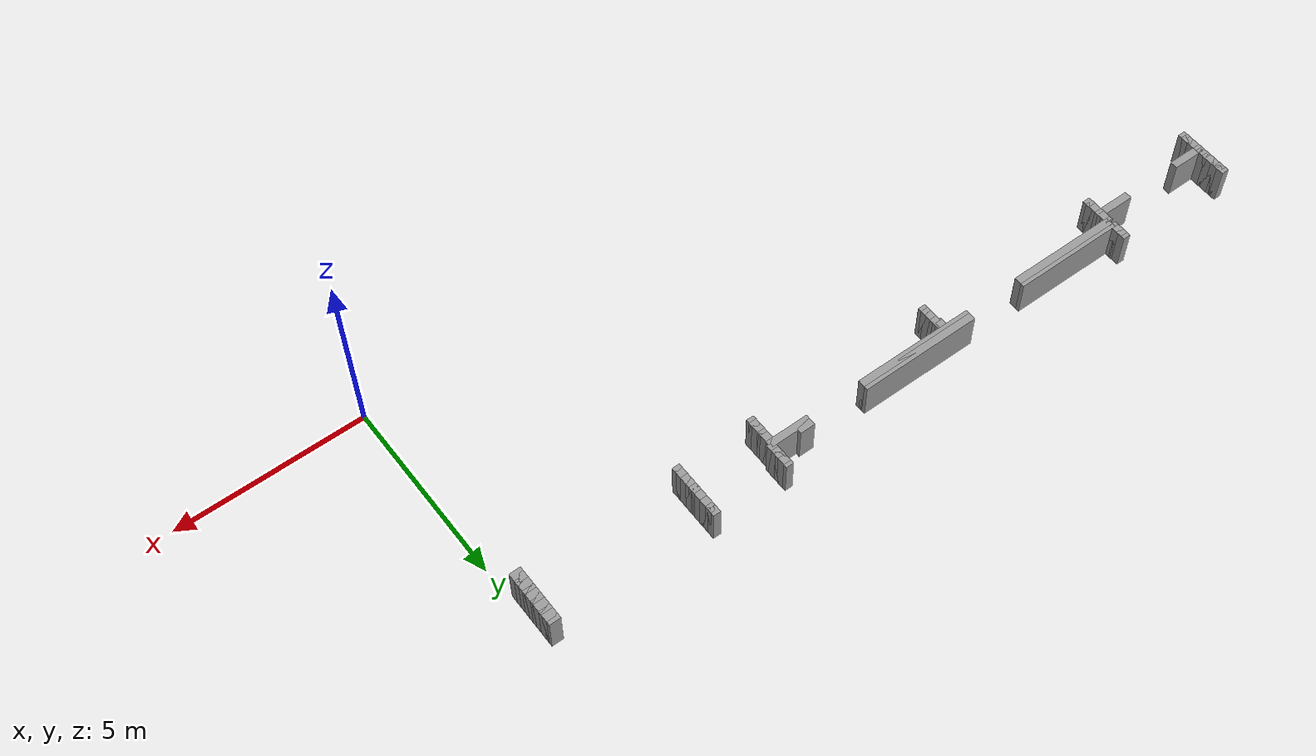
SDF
<sdf version="1.6">
 <world name="GridMap">
  <model name="GridMap">
   <link name="Wall_(198.5,61.0)">
    <collision name="Wall_(198.5,61.0)_Collision">
     <geometry><box><size>0.2 0.2 1.0</size></box></geometry>
     <pose>-19.85 6.1 0.5 0 -0 0</pose>
    </collision>
    <visual name="Wall_(198.5,61.0)_Visual">
     <geometry><box><size>0.2 0.2 1.0</size></box></geometry>
     <pose>-19.85 6.1 0.5 0 -0 0</pose>
     <material>
      <script><uri>file://media/materials/scripts/gazebo.material</uri><name>Gazebo/Grey</name></script>
      <ambient>1 1 1 1</ambient>
     </material>
     <meta><layer>0</layer></meta>
    </visual>
    <pose>0 0 0.5 0 -0 0</pose>
   </link>
   <link name="Wall_(1.5,62.0)">
    <collision name="Wall_(1.5,62.0)_Collision">
     <geometry><box><size>0.3 0.2 1.0</size></box></geometry>
     <pose>-0.15 6.2 0.5 0 -0 0</pose>
    </collision>
    <visual name="Wall_(1.5,62.0)_Visual">
     <geometry><box><size>0.3 0.2 1.0</size></box></geometry>
     <pose>-0.15 6.2 0.5 0 -0 0</pose>
     <material>
      <script><uri>file://media/materials/scripts/gazebo.material</uri><name>Gazebo/Grey</name></script>
      <ambient>1 1 1 1</ambient>
     </material>
     <meta><layer>0</layer></meta>
    </visual>
    <pose>0 0 0.5 0 -0 0</pose>
   </link>
   <link name="Wall_(44.0,62.0)">
    <collision name="Wall_(44.0,62.0)_Collision">
     <geometry><box><size>0.2 0.2 1.0</size></box></geometry>
     <pose>-4.4 6.2 0.5 0 -0 0</pose>
    </collision>
    <visual name="Wall_(44.0,62.0)_Visual">
     <geometry><box><size>0.2 0.2 1.0</size></box></geometry>
     <pose>-4.4 6.2 0.5 0 -0 0</pose>
     <material>
      <script><uri>file://media/materials/scripts/gazebo.material</uri><name>Gazebo/Grey</name></script>
      <ambient>1 1 1 1</ambient>
     </material>
     <meta><layer>0</layer></meta>
    </visual>
    <pose>0 0 0.5 0 -0 0</pose>
   </link>
   <link name="Wall_(64.5,62.0)">
    <collision name="Wall_(64.5,62.0)_Collision">
     <geometry><box><size>0.2 0.2 1.0</size></box></geometry>
     <pose>-6.45 6.2 0.5 0 -0 0</pose>
    </collision>
    <visual name="Wall_(64.5,62.0)_Visual">
     <geometry><box><size>0.2 0.2 1.0</size></box></geometry>
     <pose>-6.45 6.2 0.5 0 -0 0</pose>
     <material>
      <script><uri>file://media/materials/scripts/gazebo.material</uri><name>Gazebo/Grey</name></script>
      <ambient>1 1 1 1</ambient>
     </material>
     <meta><layer>0</layer></meta>
    </visual>
    <pose>0 0 0.5 0 -0 0</pose>
   </link>
   <link name="Wall_(114.5,62.0)">
    <collision name="Wall_(114.5,62.0)_Collision">
     <geometry><box><size>0.2 0.2 1.0</size></box></geometry>
     <pose>-11.45 6.2 0.5 0 -0 0</pose>
    </collision>
    <visual name="Wall_(114.5,62.0)_Visual">
     <geometry><box><size>0.2 0.2 1.0</size></box></geometry>
     <pose>-11.45 6.2 0.5 0 -0 0</pose>
     <material>
      <script><uri>file://media/materials/scripts/gazebo.material</uri><name>Gazebo/Grey</name></script>
      <ambient>1 1 1 1</ambient>
     </material>
     <meta><layer>0</layer></meta>
    </visual>
    <pose>0 0 0.5 0 -0 0</pose>
   </link>
   <link name="Wall_(166.0,62.0)">
    <collision name="Wall_(166.0,62.0)_Collision">
     <geometry><box><size>0.2 0.2 1.0</size></box></geometry>
     <pose>-16.6 6.2 0.5 0 -0 0</pose>
    </collision>
    <visual name="Wall_(166.0,62.0)_Visual">
     <geometry><box><size>0.2 0.2 1.0</size></box></geometry>
     <pose>-16.6 6.2 0.5 0 -0 0</pose>
     <material>
      <script><uri>file://media/materials/scripts/gazebo.material</uri><name>Gazebo/Grey</name></script>
      <ambient>1 1 1 1</ambient>
     </material>
     <meta><layer>0</layer></meta>
    </visual>
    <pose>0 0 0.5 0 -0 0</pose>
   </link>
   <link name="Wall_(198.5,62.0)">
    <collision name="Wall_(198.5,62.0)_Collision">
     <geometry><box><size>0.2 0.2 1.0</size></box></geometry>
     <pose>-19.85 6.2 0.5 0 -0 0</pose>
    </collision>
    <visual name="Wall_(198.5,62.0)_Visual">
     <geometry><box><size>0.2 0.2 1.0</size></box></geometry>
     <pose>-19.85 6.2 0.5 0 -0 0</pose>
     <material>
      <script><uri>file://media/materials/scripts/gazebo.material</uri><name>Gazebo/Grey</name></script>
      <ambient>1 1 1 1</ambient>
     </material>
     <meta><layer>0</layer></meta>
    </visual>
    <pose>0 0 0.5 0 -0 0</pose>
   </link>
   <link name="Wall_(1.5,63.0)">
    <collision name="Wall_(1.5,63.0)_Collision">
     <geometry><box><size>0.3 0.2 1.0</size></box></geometry>
     <pose>-0.15 6.3 0.5 0 -0 0</pose>
    </collision>
    <visual name="Wall_(1.5,63.0)_Visual">
     <geometry><box><size>0.3 0.2 1.0</size></box></geometry>
     <pose>-0.15 6.3 0.5 0 -0 0</pose>
     <material>
      <script><uri>file://media/materials/scripts/gazebo.material</uri><name>Gazebo/Grey</name></script>
      <ambient>1 1 1 1</ambient>
     </material>
     <meta><layer>0</layer></meta>
    </visual>
    <pose>0 0 0.5 0 -0 0</pose>
   </link>
   <link name="Wall_(44.0,63.0)">
    <collision name="Wall_(44.0,63.0)_Collision">
     <geometry><box><size>0.2 0.2 1.0</size></box></geometry>
     <pose>-4.4 6.3 0.5 0 -0 0</pose>
    </collision>
    <visual name="Wall_(44.0,63.0)_Visual">
     <geometry><box><size>0.2 0.2 1.0</size></box></geometry>
     <pose>-4.4 6.3 0.5 0 -0 0</pose>
     <material>
      <script><uri>file://media/materials/scripts/gazebo.material</uri><name>Gazebo/Grey</name></script>
      <ambient>1 1 1 1</ambient>
     </material>
     <meta><layer>0</layer></meta>
    </visual>
    <pose>0 0 0.5 0 -0 0</pose>
   </link>
   <link name="Wall_(64.5,63.0)">
    <collision name="Wall_(64.5,63.0)_Collision">
     <geometry><box><size>0.2 0.2 1.0</size></box></geometry>
     <pose>-6.45 6.3 0.5 0 -0 0</pose>
    </collision>
    <visual name="Wall_(64.5,63.0)_Visual">
     <geometry><box><size>0.2 0.2 1.0</size></box></geometry>
     <pose>-6.45 6.3 0.5 0 -0 0</pose>
     <material>
      <script><uri>file://media/materials/scripts/gazebo.material</uri><name>Gazebo/Grey</name></script>
      <ambient>1 1 1 1</ambient>
     </material>
     <meta><layer>0</layer></meta>
    </visual>
    <pose>0 0 0.5 0 -0 0</pose>
   </link>
   <link name="Wall_(114.5,63.0)">
    <collision name="Wall_(114.5,63.0)_Collision">
     <geometry><box><size>0.2 0.2 1.0</size></box></geometry>
     <pose>-11.45 6.3 0.5 0 -0 0</pose>
    </collision>
    <visual name="Wall_(114.5,63.0)_Visual">
     <geometry><box><size>0.2 0.2 1.0</size></box></geometry>
     <pose>-11.45 6.3 0.5 0 -0 0</pose>
     <material>
      <script><uri>file://media/materials/scripts/gazebo.material</uri><name>Gazebo/Grey</name></script>
      <ambient>1 1 1 1</ambient>
     </material>
     <meta><layer>0</layer></meta>
    </visual>
    <pose>0 0 0.5 0 -0 0</pose>
   </link>
   <link name="Wall_(166.0,63.0)">
    <collision name="Wall_(166.0,63.0)_Collision">
     <geometry><box><size>0.2 0.2 1.0</size></box></geometry>
     <pose>-16.6 6.3 0.5 0 -0 0</pose>
    </collision>
    <visual name="Wall_(166.0,63.0)_Visual">
     <geometry><box><size>0.2 0.2 1.0</size></box></geometry>
     <pose>-16.6 6.3 0.5 0 -0 0</pose>
     <material>
      <script><uri>file://media/materials/scripts/gazebo.material</uri><name>Gazebo/Grey</name></script>
      <ambient>1 1 1 1</ambient>
     </material>
     <meta><layer>0</layer></meta>
    </visual>
    <pose>0 0 0.5 0 -0 0</pose>
   </link>
   <link name="Wall_(198.5,63.0)">
    <collision name="Wall_(198.5,63.0)_Collision">
     <geometry><box><size>0.2 0.2 1.0</size></box></geometry>
     <pose>-19.85 6.3 0.5 0 -0 0</pose>
    </collision>
    <visual name="Wall_(198.5,63.0)_Visual">
     <geometry><box><size>0.2 0.2 1.0</size></box></geometry>
     <pose>-19.85 6.3 0.5 0 -0 0</pose>
     <material>
      <script><uri>file://media/materials/scripts/gazebo.material</uri><name>Gazebo/Grey</name></script>
      <ambient>1 1 1 1</ambient>
     </material>
     <meta><layer>0</layer></meta>
    </visual>
    <pose>0 0 0.5 0 -0 0</pose>
   </link>
   <link name="Wall_(1.5,64.0)">
    <collision name="Wall_(1.5,64.0)_Collision">
     <geometry><box><size>0.3 0.2 1.0</size></box></geometry>
     <pose>-0.15 6.4 0.5 0 -0 0</pose>
    </collision>
    <visual name="Wall_(1.5,64.0)_Visual">
     <geometry><box><size>0.3 0.2 1.0</size></box></geometry>
     <pose>-0.15 6.4 0.5 0 -0 0</pose>
     <material>
      <script><uri>file://media/materials/scripts/gazebo.material</uri><name>Gazebo/Grey</name></script>
      <ambient>1 1 1 1</ambient>
     </material>
     <meta><layer>0</layer></meta>
    </visual>
    <pose>0 0 0.5 0 -0 0</pose>
   </link>
   <link name="Wall_(44.0,64.0)">
    <collision name="Wall_(44.0,64.0)_Collision">
     <geometry><box><size>0.2 0.2 1.0</size></box></geometry>
     <pose>-4.4 6.4 0.5 0 -0 0</pose>
    </collision>
    <visual name="Wall_(44.0,64.0)_Visual">
     <geometry><box><size>0.2 0.2 1.0</size></box></geometry>
     <pose>-4.4 6.4 0.5 0 -0 0</pose>
     <material>
      <script><uri>file://media/materials/scripts/gazebo.material</uri><name>Gazebo/Grey</name></script>
      <ambient>1 1 1 1</ambient>
     </material>
     <meta><layer>0</layer></meta>
    </visual>
    <pose>0 0 0.5 0 -0 0</pose>
   </link>
   <link name="Wall_(64.5,64.0)">
    <collision name="Wall_(64.5,64.0)_Collision">
     <geometry><box><size>0.2 0.2 1.0</size></box></geometry>
     <pose>-6.45 6.4 0.5 0 -0 0</pose>
    </collision>
    <visual name="Wall_(64.5,64.0)_Visual">
     <geometry><box><size>0.2 0.2 1.0</size></box></geometry>
     <pose>-6.45 6.4 0.5 0 -0 0</pose>
     <material>
      <script><uri>file://media/materials/scripts/gazebo.material</uri><name>Gazebo/Grey</name></script>
      <ambient>1 1 1 1</ambient>
     </material>
     <meta><layer>0</layer></meta>
    </visual>
    <pose>0 0 0.5 0 -0 0</pose>
   </link>
   <link name="Wall_(114.5,64.0)">
    <collision name="Wall_(114.5,64.0)_Collision">
     <geometry><box><size>0.2 0.2 1.0</size></box></geometry>
     <pose>-11.45 6.4 0.5 0 -0 0</pose>
    </collision>
    <visual name="Wall_(114.5,64.0)_Visual">
     <geometry><box><size>0.2 0.2 1.0</size></box></geometry>
     <pose>-11.45 6.4 0.5 0 -0 0</pose>
     <material>
      <script><uri>file://media/materials/scripts/gazebo.material</uri><name>Gazebo/Grey</name></script>
      <ambient>1 1 1 1</ambient>
     </material>
     <meta><layer>0</layer></meta>
    </visual>
    <pose>0 0 0.5 0 -0 0</pose>
   </link>
   <link name="Wall_(166.0,64.0)">
    <collision name="Wall_(166.0,64.0)_Collision">
     <geometry><box><size>0.2 0.2 1.0</size></box></geometry>
     <pose>-16.6 6.4 0.5 0 -0 0</pose>
    </collision>
    <visual name="Wall_(166.0,64.0)_Visual">
     <geometry><box><size>0.2 0.2 1.0</size></box></geometry>
     <pose>-16.6 6.4 0.5 0 -0 0</pose>
     <material>
      <script><uri>file://media/materials/scripts/gazebo.material</uri><name>Gazebo/Grey</name></script>
      <ambient>1 1 1 1</ambient>
     </material>
     <meta><layer>0</layer></meta>
    </visual>
    <pose>0 0 0.5 0 -0 0</pose>
   </link>
   <link name="Wall_(198.5,64.0)">
    <collision name="Wall_(198.5,64.0)_Collision">
     <geometry><box><size>0.2 0.2 1.0</size></box></geometry>
     <pose>-19.85 6.4 0.5 0 -0 0</pose>
    </collision>
    <visual name="Wall_(198.5,64.0)_Visual">
     <geometry><box><size>0.2 0.2 1.0</size></box></geometry>
     <pose>-19.85 6.4 0.5 0 -0 0</pose>
     <material>
      <script><uri>file://media/materials/scripts/gazebo.material</uri><name>Gazebo/Grey</name></script>
      <ambient>1 1 1 1</ambient>
     </material>
     <meta><layer>0</layer></meta>
    </visual>
    <pose>0 0 0.5 0 -0 0</pose>
   </link>
   <link name="Wall_(1.5,65.0)">
    <collision name="Wall_(1.5,65.0)_Collision">
     <geometry><box><size>0.3 0.2 1.0</size></box></geometry>
     <pose>-0.15 6.5 0.5 0 -0 0</pose>
    </collision>
    <visual name="Wall_(1.5,65.0)_Visual">
     <geometry><box><size>0.3 0.2 1.0</size></box></geometry>
     <pose>-0.15 6.5 0.5 0 -0 0</pose>
     <material>
      <script><uri>file://media/materials/scripts/gazebo.material</uri><name>Gazebo/Grey</name></script>
      <ambient>1 1 1 1</ambient>
     </material>
     <meta><layer>0</layer></meta>
    </visual>
    <pose>0 0 0.5 0 -0 0</pose>
   </link>
   <link name="Wall_(44.0,65.0)">
    <collision name="Wall_(44.0,65.0)_Collision">
     <geometry><box><size>0.2 0.2 1.0</size></box></geometry>
     <pose>-4.4 6.5 0.5 0 -0 0</pose>
    </collision>
    <visual name="Wall_(44.0,65.0)_Visual">
     <geometry><box><size>0.2 0.2 1.0</size></box></geometry>
     <pose>-4.4 6.5 0.5 0 -0 0</pose>
     <material>
      <script><uri>file://media/materials/scripts/gazebo.material</uri><name>Gazebo/Grey</name></script>
      <ambient>1 1 1 1</ambient>
     </material>
     <meta><layer>0</layer></meta>
    </visual>
    <pose>0 0 0.5 0 -0 0</pose>
   </link>
   <link name="Wall_(64.5,65.0)">
    <collision name="Wall_(64.5,65.0)_Collision">
     <geometry><box><size>0.2 0.2 1.0</size></box></geometry>
     <pose>-6.45 6.5 0.5 0 -0 0</pose>
    </collision>
    <visual name="Wall_(64.5,65.0)_Visual">
     <geometry><box><size>0.2 0.2 1.0</size></box></geometry>
     <pose>-6.45 6.5 0.5 0 -0 0</pose>
     <material>
      <script><uri>file://media/materials/scripts/gazebo.material</uri><name>Gazebo/Grey</name></script>
      <ambient>1 1 1 1</ambient>
     </material>
     <meta><layer>0</layer></meta>
    </visual>
    <pose>0 0 0.5 0 -0 0</pose>
   </link>
   <link name="Wall_(114.5,65.0)">
    <collision name="Wall_(114.5,65.0)_Collision">
     <geometry><box><size>0.2 0.2 1.0</size></box></geometry>
     <pose>-11.45 6.5 0.5 0 -0 0</pose>
    </collision>
    <visual name="Wall_(114.5,65.0)_Visual">
     <geometry><box><size>0.2 0.2 1.0</size></box></geometry>
     <pose>-11.45 6.5 0.5 0 -0 0</pose>
     <material>
      <script><uri>file://media/materials/scripts/gazebo.material</uri><name>Gazebo/Grey</name></script>
      <ambient>1 1 1 1</ambient>
     </material>
     <meta><layer>0</layer></meta>
    </visual>
    <pose>0 0 0.5 0 -0 0</pose>
   </link>
   <link name="Wall_(166.0,65.0)">
    <collision name="Wall_(166.0,65.0)_Collision">
     <geometry><box><size>0.2 0.2 1.0</size></box></geometry>
     <pose>-16.6 6.5 0.5 0 -0 0</pose>
    </collision>
    <visual name="Wall_(166.0,65.0)_Visual">
     <geometry><box><size>0.2 0.2 1.0</size></box></geometry>
     <pose>-16.6 6.5 0.5 0 -0 0</pose>
     <material>
      <script><uri>file://media/materials/scripts/gazebo.material</uri><name>Gazebo/Grey</name></script>
      <ambient>1 1 1 1</ambient>
     </material>
     <meta><layer>0</layer></meta>
    </visual>
    <pose>0 0 0.5 0 -0 0</pose>
   </link>
   <link name="Wall_(198.5,65.0)">
    <collision name="Wall_(198.5,65.0)_Collision">
     <geometry><box><size>0.2 0.2 1.0</size></box></geometry>
     <pose>-19.85 6.5 0.5 0 -0 0</pose>
    </collision>
    <visual name="Wall_(198.5,65.0)_Visual">
     <geometry><box><size>0.2 0.2 1.0</size></box></geometry>
     <pose>-19.85 6.5 0.5 0 -0 0</pose>
     <material>
      <script><uri>file://media/materials/scripts/gazebo.material</uri><name>Gazebo/Grey</name></script>
      <ambient>1 1 1 1</ambient>
     </material>
     <meta><layer>0</layer></meta>
    </visual>
    <pose>0 0 0.5 0 -0 0</pose>
   </link>
   <link name="Wall_(1.5,66.0)">
    <collision name="Wall_(1.5,66.0)_Collision">
     <geometry><box><size>0.3 0.2 1.0</size></box></geometry>
     <pose>-0.15 6.6 0.5 0 -0 0</pose>
    </collision>
    <visual name="Wall_(1.5,66.0)_Visual">
     <geometry><box><size>0.3 0.2 1.0</size></box></geometry>
     <pose>-0.15 6.6 0.5 0 -0 0</pose>
     <material>
      <script><uri>file://media/materials/scripts/gazebo.material</uri><name>Gazebo/Grey</name></script>
      <ambient>1 1 1 1</ambient>
     </material>
     <meta><layer>0</layer></meta>
    </visual>
    <pose>0 0 0.5 0 -0 0</pose>
   </link>
   <link name="Wall_(44.0,66.0)">
    <collision name="Wall_(44.0,66.0)_Collision">
     <geometry><box><size>0.2 0.2 1.0</size></box></geometry>
     <pose>-4.4 6.6 0.5 0 -0 0</pose>
    </collision>
    <visual name="Wall_(44.0,66.0)_Visual">
     <geometry><box><size>0.2 0.2 1.0</size></box></geometry>
     <pose>-4.4 6.6 0.5 0 -0 0</pose>
     <material>
      <script><uri>file://media/materials/scripts/gazebo.material</uri><name>Gazebo/Grey</name></script>
      <ambient>1 1 1 1</ambient>
     </material>
     <meta><layer>0</layer></meta>
    </visual>
    <pose>0 0 0.5 0 -0 0</pose>
   </link>
   <link name="Wall_(64.5,66.0)">
    <collision name="Wall_(64.5,66.0)_Collision">
     <geometry><box><size>0.2 0.2 1.0</size></box></geometry>
     <pose>-6.45 6.6 0.5 0 -0 0</pose>
    </collision>
    <visual name="Wall_(64.5,66.0)_Visual">
     <geometry><box><size>0.2 0.2 1.0</size></box></geometry>
     <pose>-6.45 6.6 0.5 0 -0 0</pose>
     <material>
      <script><uri>file://media/materials/scripts/gazebo.material</uri><name>Gazebo/Grey</name></script>
      <ambient>1 1 1 1</ambient>
     </material>
     <meta><layer>0</layer></meta>
    </visual>
    <pose>0 0 0.5 0 -0 0</pose>
   </link>
   <link name="Wall_(114.5,66.0)">
    <collision name="Wall_(114.5,66.0)_Collision">
     <geometry><box><size>0.2 0.2 1.0</size></box></geometry>
     <pose>-11.45 6.6 0.5 0 -0 0</pose>
    </collision>
    <visual name="Wall_(114.5,66.0)_Visual">
     <geometry><box><size>0.2 0.2 1.0</size></box></geometry>
     <pose>-11.45 6.6 0.5 0 -0 0</pose>
     <material>
      <script><uri>file://media/materials/scripts/gazebo.material</uri><name>Gazebo/Grey</name></script>
      <ambient>1 1 1 1</ambient>
     </material>
     <meta><layer>0</layer></meta>
    </visual>
    <pose>0 0 0.5 0 -0 0</pose>
   </link>
   <link name="Wall_(170.5,66.0)">
    <collision name="Wall_(170.5,66.0)_Collision">
     <geometry><box><size>0.9 0.2 1.0</size></box></geometry>
     <pose>-17.05 6.6 0.5 0 -0 0</pose>
    </collision>
    <visual name="Wall_(170.5,66.0)_Visual">
     <geometry><box><size>0.9 0.2 1.0</size></box></geometry>
     <pose>-17.05 6.6 0.5 0 -0 0</pose>
     <material>
      <script><uri>file://media/materials/scripts/gazebo.material</uri><name>Gazebo/Grey</name></script>
      <ambient>1 1 1 1</ambient>
     </material>
     <meta><layer>0</layer></meta>
    </visual>
    <pose>0 0 0.5 0 -0 0</pose>
   </link>
   <link name="Wall_(194.5,66.0)">
    <collision name="Wall_(194.5,66.0)_Collision">
     <geometry><box><size>0.9 0.2 1.0</size></box></geometry>
     <pose>-19.45 6.6 0.5 0 -0 0</pose>
    </collision>
    <visual name="Wall_(194.5,66.0)_Visual">
     <geometry><box><size>0.9 0.2 1.0</size></box></geometry>
     <pose>-19.45 6.6 0.5 0 -0 0</pose>
     <material>
      <script><uri>file://media/materials/scripts/gazebo.material</uri><name>Gazebo/Grey</name></script>
      <ambient>1 1 1 1</ambient>
     </material>
     <meta><layer>0</layer></meta>
    </visual>
    <pose>0 0 0.5 0 -0 0</pose>
   </link>
   <link name="Wall_(1.5,67.0)">
    <collision name="Wall_(1.5,67.0)_Collision">
     <geometry><box><size>0.3 0.2 1.0</size></box></geometry>
     <pose>-0.15 6.7 0.5 0 -0 0</pose>
    </collision>
    <visual name="Wall_(1.5,67.0)_Visual">
     <geometry><box><size>0.3 0.2 1.0</size></box></geometry>
     <pose>-0.15 6.7 0.5 0 -0 0</pose>
     <material>
      <script><uri>file://media/materials/scripts/gazebo.material</uri><name>Gazebo/Grey</name></script>
      <ambient>1 1 1 1</ambient>
     </material>
     <meta><layer>0</layer></meta>
    </visual>
    <pose>0 0 0.5 0 -0 0</pose>
   </link>
   <link name="Wall_(44.0,67.0)">
    <collision name="Wall_(44.0,67.0)_Collision">
     <geometry><box><size>0.2 0.2 1.0</size></box></geometry>
     <pose>-4.4 6.7 0.5 0 -0 0</pose>
    </collision>
    <visual name="Wall_(44.0,67.0)_Visual">
     <geometry><box><size>0.2 0.2 1.0</size></box></geometry>
     <pose>-4.4 6.7 0.5 0 -0 0</pose>
     <material>
      <script><uri>file://media/materials/scripts/gazebo.material</uri><name>Gazebo/Grey</name></script>
      <ambient>1 1 1 1</ambient>
     </material>
     <meta><layer>0</layer></meta>
    </visual>
    <pose>0 0 0.5 0 -0 0</pose>
   </link>
   <link name="Wall_(64.5,67.0)">
    <collision name="Wall_(64.5,67.0)_Collision">
     <geometry><box><size>0.2 0.2 1.0</size></box></geometry>
     <pose>-6.45 6.7 0.5 0 -0 0</pose>
    </collision>
    <visual name="Wall_(64.5,67.0)_Visual">
     <geometry><box><size>0.2 0.2 1.0</size></box></geometry>
     <pose>-6.45 6.7 0.5 0 -0 0</pose>
     <material>
      <script><uri>file://media/materials/scripts/gazebo.material</uri><name>Gazebo/Grey</name></script>
      <ambient>1 1 1 1</ambient>
     </material>
     <meta><layer>0</layer></meta>
    </visual>
    <pose>0 0 0.5 0 -0 0</pose>
   </link>
   <link name="Wall_(115.0,67.0)">
    <collision name="Wall_(115.0,67.0)_Collision">
     <geometry><box><size>0.2 0.2 1.0</size></box></geometry>
     <pose>-11.5 6.7 0.5 0 -0 0</pose>
    </collision>
    <visual name="Wall_(115.0,67.0)_Visual">
     <geometry><box><size>0.2 0.2 1.0</size></box></geometry>
     <pose>-11.5 6.7 0.5 0 -0 0</pose>
     <material>
      <script><uri>file://media/materials/scripts/gazebo.material</uri><name>Gazebo/Grey</name></script>
      <ambient>1 1 1 1</ambient>
     </material>
     <meta><layer>0</layer></meta>
    </visual>
    <pose>0 0 0.5 0 -0 0</pose>
   </link>
   <link name="Wall_(166.0,67.0)">
    <collision name="Wall_(166.0,67.0)_Collision">
     <geometry><box><size>0.2 0.2 1.0</size></box></geometry>
     <pose>-16.6 6.7 0.5 0 -0 0</pose>
    </collision>
    <visual name="Wall_(166.0,67.0)_Visual">
     <geometry><box><size>0.2 0.2 1.0</size></box></geometry>
     <pose>-16.6 6.7 0.5 0 -0 0</pose>
     <material>
      <script><uri>file://media/materials/scripts/gazebo.material</uri><name>Gazebo/Grey</name></script>
      <ambient>1 1 1 1</ambient>
     </material>
     <meta><layer>0</layer></meta>
    </visual>
    <pose>0 0 0.5 0 -0 0</pose>
   </link>
   <link name="Wall_(198.5,67.0)">
    <collision name="Wall_(198.5,67.0)_Collision">
     <geometry><box><size>0.2 0.2 1.0</size></box></geometry>
     <pose>-19.85 6.7 0.5 0 -0 0</pose>
    </collision>
    <visual name="Wall_(198.5,67.0)_Visual">
     <geometry><box><size>0.2 0.2 1.0</size></box></geometry>
     <pose>-19.85 6.7 0.5 0 -0 0</pose>
     <material>
      <script><uri>file://media/materials/scripts/gazebo.material</uri><name>Gazebo/Grey</name></script>
      <ambient>1 1 1 1</ambient>
     </material>
     <meta><layer>0</layer></meta>
    </visual>
    <pose>0 0 0.5 0 -0 0</pose>
   </link>
   <link name="Wall_(1.5,68.0)">
    <collision name="Wall_(1.5,68.0)_Collision">
     <geometry><box><size>0.3 0.2 1.0</size></box></geometry>
     <pose>-0.15 6.8 0.5 0 -0 0</pose>
    </collision>
    <visual name="Wall_(1.5,68.0)_Visual">
     <geometry><box><size>0.3 0.2 1.0</size></box></geometry>
     <pose>-0.15 6.8 0.5 0 -0 0</pose>
     <material>
      <script><uri>file://media/materials/scripts/gazebo.material</uri><name>Gazebo/Grey</name></script>
      <ambient>1 1 1 1</ambient>
     </material>
     <meta><layer>0</layer></meta>
    </visual>
    <pose>0 0 0.5 0 -0 0</pose>
   </link>
   <link name="Wall_(44.0,68.0)">
    <collision name="Wall_(44.0,68.0)_Collision">
     <geometry><box><size>0.2 0.2 1.0</size></box></geometry>
     <pose>-4.4 6.8 0.5 0 -0 0</pose>
    </collision>
    <visual name="Wall_(44.0,68.0)_Visual">
     <geometry><box><size>0.2 0.2 1.0</size></box></geometry>
     <pose>-4.4 6.8 0.5 0 -0 0</pose>
     <material>
      <script><uri>file://media/materials/scripts/gazebo.material</uri><name>Gazebo/Grey</name></script>
      <ambient>1 1 1 1</ambient>
     </material>
     <meta><layer>0</layer></meta>
    </visual>
    <pose>0 0 0.5 0 -0 0</pose>
   </link>
   <link name="Wall_(64.5,68.0)">
    <collision name="Wall_(64.5,68.0)_Collision">
     <geometry><box><size>0.2 0.2 1.0</size></box></geometry>
     <pose>-6.45 6.8 0.5 0 -0 0</pose>
    </collision>
    <visual name="Wall_(64.5,68.0)_Visual">
     <geometry><box><size>0.2 0.2 1.0</size></box></geometry>
     <pose>-6.45 6.8 0.5 0 -0 0</pose>
     <material>
      <script><uri>file://media/materials/scripts/gazebo.material</uri><name>Gazebo/Grey</name></script>
      <ambient>1 1 1 1</ambient>
     </material>
     <meta><layer>0</layer></meta>
    </visual>
    <pose>0 0 0.5 0 -0 0</pose>
   </link>
   <link name="Wall_(114.5,68.0)">
    <collision name="Wall_(114.5,68.0)_Collision">
     <geometry><box><size>0.2 0.2 1.0</size></box></geometry>
     <pose>-11.45 6.8 0.5 0 -0 0</pose>
    </collision>
    <visual name="Wall_(114.5,68.0)_Visual">
     <geometry><box><size>0.2 0.2 1.0</size></box></geometry>
     <pose>-11.45 6.8 0.5 0 -0 0</pose>
     <material>
      <script><uri>file://media/materials/scripts/gazebo.material</uri><name>Gazebo/Grey</name></script>
      <ambient>1 1 1 1</ambient>
     </material>
     <meta><layer>0</layer></meta>
    </visual>
    <pose>0 0 0.5 0 -0 0</pose>
   </link>
   <link name="Wall_(166.0,68.0)">
    <collision name="Wall_(166.0,68.0)_Collision">
     <geometry><box><size>0.2 0.2 1.0</size></box></geometry>
     <pose>-16.6 6.8 0.5 0 -0 0</pose>
    </collision>
    <visual name="Wall_(166.0,68.0)_Visual">
     <geometry><box><size>0.2 0.2 1.0</size></box></geometry>
     <pose>-16.6 6.8 0.5 0 -0 0</pose>
     <material>
      <script><uri>file://media/materials/scripts/gazebo.material</uri><name>Gazebo/Grey</name></script>
      <ambient>1 1 1 1</ambient>
     </material>
     <meta><layer>0</layer></meta>
    </visual>
    <pose>0 0 0.5 0 -0 0</pose>
   </link>
   <link name="Wall_(198.5,68.0)">
    <collision name="Wall_(198.5,68.0)_Collision">
     <geometry><box><size>0.2 0.2 1.0</size></box></geometry>
     <pose>-19.85 6.8 0.5 0 -0 0</pose>
    </collision>
    <visual name="Wall_(198.5,68.0)_Visual">
     <geometry><box><size>0.2 0.2 1.0</size></box></geometry>
     <pose>-19.85 6.8 0.5 0 -0 0</pose>
     <material>
      <script><uri>file://media/materials/scripts/gazebo.material</uri><name>Gazebo/Grey</name></script>
      <ambient>1 1 1 1</ambient>
     </material>
     <meta><layer>0</layer></meta>
    </visual>
    <pose>0 0 0.5 0 -0 0</pose>
   </link>
   <link name="Wall_(1.5,69.0)">
    <collision name="Wall_(1.5,69.0)_Collision">
     <geometry><box><size>0.3 0.2 1.0</size></box></geometry>
     <pose>-0.15 6.9 0.5 0 -0 0</pose>
    </collision>
    <visual name="Wall_(1.5,69.0)_Visual">
     <geometry><box><size>0.3 0.2 1.0</size></box></geometry>
     <pose>-0.15 6.9 0.5 0 -0 0</pose>
     <material>
      <script><uri>file://media/materials/scripts/gazebo.material</uri><name>Gazebo/Grey</name></script>
      <ambient>1 1 1 1</ambient>
     </material>
     <meta><layer>0</layer></meta>
    </visual>
    <pose>0 0 0.5 0 -0 0</pose>
   </link>
   <link name="Wall_(44.0,69.0)">
    <collision name="Wall_(44.0,69.0)_Collision">
     <geometry><box><size>0.2 0.2 1.0</size></box></geometry>
     <pose>-4.4 6.9 0.5 0 -0 0</pose>
    </collision>
    <visual name="Wall_(44.0,69.0)_Visual">
     <geometry><box><size>0.2 0.2 1.0</size></box></geometry>
     <pose>-4.4 6.9 0.5 0 -0 0</pose>
     <material>
      <script><uri>file://media/materials/scripts/gazebo.material</uri><name>Gazebo/Grey</name></script>
      <ambient>1 1 1 1</ambient>
     </material>
     <meta><layer>0</layer></meta>
    </visual>
    <pose>0 0 0.5 0 -0 0</pose>
   </link>
   <link name="Wall_(69.5,69.0)">
    <collision name="Wall_(69.5,69.0)_Collision">
     <geometry><box><size>1.1 0.2 1.0</size></box></geometry>
     <pose>-6.95 6.9 0.5 0 -0 0</pose>
    </collision>
    <visual name="Wall_(69.5,69.0)_Visual">
     <geometry><box><size>1.1 0.2 1.0</size></box></geometry>
     <pose>-6.95 6.9 0.5 0 -0 0</pose>
     <material>
      <script><uri>file://media/materials/scripts/gazebo.material</uri><name>Gazebo/Grey</name></script>
      <ambient>1 1 1 1</ambient>
     </material>
     <meta><layer>0</layer></meta>
    </visual>
    <pose>0 0 0.5 0 -0 0</pose>
   </link>
   <link name="Wall_(106.0,69.0)">
    <collision name="Wall_(106.0,69.0)_Collision">
     <geometry><box><size>3.2 0.2 1.0</size></box></geometry>
     <pose>-10.6 6.9 0.5 0 -0 0</pose>
    </collision>
    <visual name="Wall_(106.0,69.0)_Visual">
     <geometry><box><size>3.2 0.2 1.0</size></box></geometry>
     <pose>-10.6 6.9 0.5 0 -0 0</pose>
     <material>
      <script><uri>file://media/materials/scripts/gazebo.material</uri><name>Gazebo/Grey</name></script>
      <ambient>1 1 1 1</ambient>
     </material>
     <meta><layer>0</layer></meta>
    </visual>
    <pose>0 0 0.5 0 -0 0</pose>
   </link>
   <link name="Wall_(151.5,69.0)">
    <collision name="Wall_(151.5,69.0)_Collision">
     <geometry><box><size>2.9 0.2 1.0</size></box></geometry>
     <pose>-15.15 6.9 0.5 0 -0 0</pose>
    </collision>
    <visual name="Wall_(151.5,69.0)_Visual">
     <geometry><box><size>2.9 0.2 1.0</size></box></geometry>
     <pose>-15.15 6.9 0.5 0 -0 0</pose>
     <material>
      <script><uri>file://media/materials/scripts/gazebo.material</uri><name>Gazebo/Grey</name></script>
      <ambient>1 1 1 1</ambient>
     </material>
     <meta><layer>0</layer></meta>
    </visual>
    <pose>0 0 0.5 0 -0 0</pose>
   </link>
   <link name="Wall_(198.5,69.0)">
    <collision name="Wall_(198.5,69.0)_Collision">
     <geometry><box><size>0.2 0.2 1.0</size></box></geometry>
     <pose>-19.85 6.9 0.5 0 -0 0</pose>
    </collision>
    <visual name="Wall_(198.5,69.0)_Visual">
     <geometry><box><size>0.2 0.2 1.0</size></box></geometry>
     <pose>-19.85 6.9 0.5 0 -0 0</pose>
     <material>
      <script><uri>file://media/materials/scripts/gazebo.material</uri><name>Gazebo/Grey</name></script>
      <ambient>1 1 1 1</ambient>
     </material>
     <meta><layer>0</layer></meta>
    </visual>
    <pose>0 0 0.5 0 -0 0</pose>
   </link>
   <link name="Wall_(1.5,70.0)">
    <collision name="Wall_(1.5,70.0)_Collision">
     <geometry><box><size>0.3 0.2 1.0</size></box></geometry>
     <pose>-0.15 7.0 0.5 0 -0 0</pose>
    </collision>
    <visual name="Wall_(1.5,70.0)_Visual">
     <geometry><box><size>0.3 0.2 1.0</size></box></geometry>
     <pose>-0.15 7.0 0.5 0 -0 0</pose>
     <material>
      <script><uri>file://media/materials/scripts/gazebo.material</uri><name>Gazebo/Grey</name></script>
      <ambient>1 1 1 1</ambient>
     </material>
     <meta><layer>0</layer></meta>
    </visual>
    <pose>0 0 0.5 0 -0 0</pose>
   </link>
   <link name="Wall_(44.0,70.0)">
    <collision name="Wall_(44.0,70.0)_Collision">
     <geometry><box><size>0.2 0.2 1.0</size></box></geometry>
     <pose>-4.4 7.0 0.5 0 -0 0</pose>
    </collision>
    <visual name="Wall_(44.0,70.0)_Visual">
     <geometry><box><size>0.2 0.2 1.0</size></box></geometry>
     <pose>-4.4 7.0 0.5 0 -0 0</pose>
     <material>
      <script><uri>file://media/materials/scripts/gazebo.material</uri><name>Gazebo/Grey</name></script>
      <ambient>1 1 1 1</ambient>
     </material>
     <meta><layer>0</layer></meta>
    </visual>
    <pose>0 0 0.5 0 -0 0</pose>
   </link>
   <link name="Wall_(64.0,70.0)">
    <collision name="Wall_(64.0,70.0)_Collision">
     <geometry><box><size>0.2 0.2 1.0</size></box></geometry>
     <pose>-6.4 7.0 0.5 0 -0 0</pose>
    </collision>
    <visual name="Wall_(64.0,70.0)_Visual">
     <geometry><box><size>0.2 0.2 1.0</size></box></geometry>
     <pose>-6.4 7.0 0.5 0 -0 0</pose>
     <material>
      <script><uri>file://media/materials/scripts/gazebo.material</uri><name>Gazebo/Grey</name></script>
      <ambient>1 1 1 1</ambient>
     </material>
     <meta><layer>0</layer></meta>
    </visual>
    <pose>0 0 0.5 0 -0 0</pose>
   </link>
   <link name="Wall_(73.0,70.0)">
    <collision name="Wall_(73.0,70.0)_Collision">
     <geometry><box><size>0.4 0.2 1.0</size></box></geometry>
     <pose>-7.3 7.0 0.5 0 -0 0</pose>
    </collision>
    <visual name="Wall_(73.0,70.0)_Visual">
     <geometry><box><size>0.4 0.2 1.0</size></box></geometry>
     <pose>-7.3 7.0 0.5 0 -0 0</pose>
     <material>
      <script><uri>file://media/materials/scripts/gazebo.material</uri><name>Gazebo/Grey</name></script>
      <ambient>1 1 1 1</ambient>
     </material>
     <meta><layer>0</layer></meta>
    </visual>
    <pose>0 0 0.5 0 -0 0</pose>
   </link>
   <link name="Wall_(106.0,70.0)">
    <collision name="Wall_(106.0,70.0)_Collision">
     <geometry><box><size>3.2 0.2 1.0</size></box></geometry>
     <pose>-10.6 7.0 0.5 0 -0 0</pose>
    </collision>
    <visual name="Wall_(106.0,70.0)_Visual">
     <geometry><box><size>3.2 0.2 1.0</size></box></geometry>
     <pose>-10.6 7.0 0.5 0 -0 0</pose>
     <material>
      <script><uri>file://media/materials/scripts/gazebo.material</uri><name>Gazebo/Grey</name></script>
      <ambient>1 1 1 1</ambient>
     </material>
     <meta><layer>0</layer></meta>
    </visual>
    <pose>0 0 0.5 0 -0 0</pose>
   </link>
   <link name="Wall_(151.5,70.0)">
    <collision name="Wall_(151.5,70.0)_Collision">
     <geometry><box><size>2.9 0.2 1.0</size></box></geometry>
     <pose>-15.15 7.0 0.5 0 -0 0</pose>
    </collision>
    <visual name="Wall_(151.5,70.0)_Visual">
     <geometry><box><size>2.9 0.2 1.0</size></box></geometry>
     <pose>-15.15 7.0 0.5 0 -0 0</pose>
     <material>
      <script><uri>file://media/materials/scripts/gazebo.material</uri><name>Gazebo/Grey</name></script>
      <ambient>1 1 1 1</ambient>
     </material>
     <meta><layer>0</layer></meta>
    </visual>
    <pose>0 0 0.5 0 -0 0</pose>
   </link>
   <link name="Wall_(198.5,70.0)">
    <collision name="Wall_(198.5,70.0)_Collision">
     <geometry><box><size>0.2 0.2 1.0</size></box></geometry>
     <pose>-19.85 7.0 0.5 0 -0 0</pose>
    </collision>
    <visual name="Wall_(198.5,70.0)_Visual">
     <geometry><box><size>0.2 0.2 1.0</size></box></geometry>
     <pose>-19.85 7.0 0.5 0 -0 0</pose>
     <material>
      <script><uri>file://media/materials/scripts/gazebo.material</uri><name>Gazebo/Grey</name></script>
      <ambient>1 1 1 1</ambient>
     </material>
     <meta><layer>0</layer></meta>
    </visual>
    <pose>0 0 0.5 0 -0 0</pose>
   </link>
   <link name="Wall_(1.5,71.0)">
    <collision name="Wall_(1.5,71.0)_Collision">
     <geometry><box><size>0.3 0.2 1.0</size></box></geometry>
     <pose>-0.15 7.1 0.5 0 -0 0</pose>
    </collision>
    <visual name="Wall_(1.5,71.0)_Visual">
     <geometry><box><size>0.3 0.2 1.0</size></box></geometry>
     <pose>-0.15 7.1 0.5 0 -0 0</pose>
     <material>
      <script><uri>file://media/materials/scripts/gazebo.material</uri><name>Gazebo/Grey</name></script>
      <ambient>1 1 1 1</ambient>
     </material>
     <meta><layer>0</layer></meta>
    </visual>
    <pose>0 0 0.5 0 -0 0</pose>
   </link>
   <link name="Wall_(44.0,71.0)">
    <collision name="Wall_(44.0,71.0)_Collision">
     <geometry><box><size>0.2 0.2 1.0</size></box></geometry>
     <pose>-4.4 7.1 0.5 0 -0 0</pose>
    </collision>
    <visual name="Wall_(44.0,71.0)_Visual">
     <geometry><box><size>0.2 0.2 1.0</size></box></geometry>
     <pose>-4.4 7.1 0.5 0 -0 0</pose>
     <material>
      <script><uri>file://media/materials/scripts/gazebo.material</uri><name>Gazebo/Grey</name></script>
      <ambient>1 1 1 1</ambient>
     </material>
     <meta><layer>0</layer></meta>
    </visual>
    <pose>0 0 0.5 0 -0 0</pose>
   </link>
   <link name="Wall_(64.0,71.0)">
    <collision name="Wall_(64.0,71.0)_Collision">
     <geometry><box><size>0.2 0.2 1.0</size></box></geometry>
     <pose>-6.4 7.1 0.5 0 -0 0</pose>
    </collision>
    <visual name="Wall_(64.0,71.0)_Visual">
     <geometry><box><size>0.2 0.2 1.0</size></box></geometry>
     <pose>-6.4 7.1 0.5 0 -0 0</pose>
     <material>
      <script><uri>file://media/materials/scripts/gazebo.material</uri><name>Gazebo/Grey</name></script>
      <ambient>1 1 1 1</ambient>
     </material>
     <meta><layer>0</layer></meta>
    </visual>
    <pose>0 0 0.5 0 -0 0</pose>
   </link>
   <link name="Wall_(166.0,71.0)">
    <collision name="Wall_(166.0,71.0)_Collision">
     <geometry><box><size>0.2 0.2 1.0</size></box></geometry>
     <pose>-16.6 7.1 0.5 0 -0 0</pose>
    </collision>
    <visual name="Wall_(166.0,71.0)_Visual">
     <geometry><box><size>0.2 0.2 1.0</size></box></geometry>
     <pose>-16.6 7.1 0.5 0 -0 0</pose>
     <material>
      <script><uri>file://media/materials/scripts/gazebo.material</uri><name>Gazebo/Grey</name></script>
      <ambient>1 1 1 1</ambient>
     </material>
     <meta><layer>0</layer></meta>
    </visual>
    <pose>0 0 0.5 0 -0 0</pose>
   </link>
   <link name="Wall_(198.5,71.0)">
    <collision name="Wall_(198.5,71.0)_Collision">
     <geometry><box><size>0.2 0.2 1.0</size></box></geometry>
     <pose>-19.85 7.1 0.5 0 -0 0</pose>
    </collision>
    <visual name="Wall_(198.5,71.0)_Visual">
     <geometry><box><size>0.2 0.2 1.0</size></box></geometry>
     <pose>-19.85 7.1 0.5 0 -0 0</pose>
     <material>
      <script><uri>file://media/materials/scripts/gazebo.material</uri><name>Gazebo/Grey</name></script>
      <ambient>1 1 1 1</ambient>
     </material>
     <meta><layer>0</layer></meta>
    </visual>
    <pose>0 0 0.5 0 -0 0</pose>
   </link>
   <link name="Wall_(1.5,72.0)">
    <collision name="Wall_(1.5,72.0)_Collision">
     <geometry><box><size>0.3 0.2 1.0</size></box></geometry>
     <pose>-0.15 7.2 0.5 0 -0 0</pose>
    </collision>
    <visual name="Wall_(1.5,72.0)_Visual">
     <geometry><box><size>0.3 0.2 1.0</size></box></geometry>
     <pose>-0.15 7.2 0.5 0 -0 0</pose>
     <material>
      <script><uri>file://media/materials/scripts/gazebo.material</uri><name>Gazebo/Grey</name></script>
      <ambient>1 1 1 1</ambient>
     </material>
     <meta><layer>0</layer></meta>
    </visual>
    <pose>0 0 0.5 0 -0 0</pose>
   </link>
   <link name="Wall_(44.0,72.0)">
    <collision name="Wall_(44.0,72.0)_Collision">
     <geometry><box><size>0.2 0.2 1.0</size></box></geometry>
     <pose>-4.4 7.2 0.5 0 -0 0</pose>
    </collision>
    <visual name="Wall_(44.0,72.0)_Visual">
     <geometry><box><size>0.2 0.2 1.0</size></box></geometry>
     <pose>-4.4 7.2 0.5 0 -0 0</pose>
     <material>
      <script><uri>file://media/materials/scripts/gazebo.material</uri><name>Gazebo/Grey</name></script>
      <ambient>1 1 1 1</ambient>
     </material>
     <meta><layer>0</layer></meta>
    </visual>
    <pose>0 0 0.5 0 -0 0</pose>
   </link>
   <link name="Wall_(64.0,72.0)">
    <collision name="Wall_(64.0,72.0)_Collision">
     <geometry><box><size>0.2 0.2 1.0</size></box></geometry>
     <pose>-6.4 7.2 0.5 0 -0 0</pose>
    </collision>
    <visual name="Wall_(64.0,72.0)_Visual">
     <geometry><box><size>0.2 0.2 1.0</size></box></geometry>
     <pose>-6.4 7.2 0.5 0 -0 0</pose>
     <material>
      <script><uri>file://media/materials/scripts/gazebo.material</uri><name>Gazebo/Grey</name></script>
      <ambient>1 1 1 1</ambient>
     </material>
     <meta><layer>0</layer></meta>
    </visual>
    <pose>0 0 0.5 0 -0 0</pose>
   </link>
   <link name="Wall_(166.0,72.0)">
    <collision name="Wall_(166.0,72.0)_Collision">
     <geometry><box><size>0.2 0.2 1.0</size></box></geometry>
     <pose>-16.6 7.2 0.5 0 -0 0</pose>
    </collision>
    <visual name="Wall_(166.0,72.0)_Visual">
     <geometry><box><size>0.2 0.2 1.0</size></box></geometry>
     <pose>-16.6 7.2 0.5 0 -0 0</pose>
     <material>
      <script><uri>file://media/materials/scripts/gazebo.material</uri><name>Gazebo/Grey</name></script>
      <ambient>1 1 1 1</ambient>
     </material>
     <meta><layer>0</layer></meta>
    </visual>
    <pose>0 0 0.5 0 -0 0</pose>
   </link>
   <link name="Wall_(198.5,72.0)">
    <collision name="Wall_(198.5,72.0)_Collision">
     <geometry><box><size>0.2 0.2 1.0</size></box></geometry>
     <pose>-19.85 7.2 0.5 0 -0 0</pose>
    </collision>
    <visual name="Wall_(198.5,72.0)_Visual">
     <geometry><box><size>0.2 0.2 1.0</size></box></geometry>
     <pose>-19.85 7.2 0.5 0 -0 0</pose>
     <material>
      <script><uri>file://media/materials/scripts/gazebo.material</uri><name>Gazebo/Grey</name></script>
      <ambient>1 1 1 1</ambient>
     </material>
     <meta><layer>0</layer></meta>
    </visual>
    <pose>0 0 0.5 0 -0 0</pose>
   </link>
   <link name="Wall_(1.5,73.0)">
    <collision name="Wall_(1.5,73.0)_Collision">
     <geometry><box><size>0.3 0.2 1.0</size></box></geometry>
     <pose>-0.15 7.3 0.5 0 -0 0</pose>
    </collision>
    <visual name="Wall_(1.5,73.0)_Visual">
     <geometry><box><size>0.3 0.2 1.0</size></box></geometry>
     <pose>-0.15 7.3 0.5 0 -0 0</pose>
     <material>
      <script><uri>file://media/materials/scripts/gazebo.material</uri><name>Gazebo/Grey</name></script>
      <ambient>1 1 1 1</ambient>
     </material>
     <meta><layer>0</layer></meta>
    </visual>
    <pose>0 0 0.5 0 -0 0</pose>
   </link>
   <link name="Wall_(44.0,73.0)">
    <collision name="Wall_(44.0,73.0)_Collision">
     <geometry><box><size>0.2 0.2 1.0</size></box></geometry>
     <pose>-4.4 7.3 0.5 0 -0 0</pose>
    </collision>
    <visual name="Wall_(44.0,73.0)_Visual">
     <geometry><box><size>0.2 0.2 1.0</size></box></geometry>
     <pose>-4.4 7.3 0.5 0 -0 0</pose>
     <material>
      <script><uri>file://media/materials/scripts/gazebo.material</uri><name>Gazebo/Grey</name></script>
      <ambient>1 1 1 1</ambient>
     </material>
     <meta><layer>0</layer></meta>
    </visual>
    <pose>0 0 0.5 0 -0 0</pose>
   </link>
   <link name="Wall_(64.0,73.0)">
    <collision name="Wall_(64.0,73.0)_Collision">
     <geometry><box><size>0.2 0.2 1.0</size></box></geometry>
     <pose>-6.4 7.3 0.5 0 -0 0</pose>
    </collision>
    <visual name="Wall_(64.0,73.0)_Visual">
     <geometry><box><size>0.2 0.2 1.0</size></box></geometry>
     <pose>-6.4 7.3 0.5 0 -0 0</pose>
     <material>
      <script><uri>file://media/materials/scripts/gazebo.material</uri><name>Gazebo/Grey</name></script>
      <ambient>1 1 1 1</ambient>
     </material>
     <meta><layer>0</layer></meta>
    </visual>
    <pose>0 0 0.5 0 -0 0</pose>
   </link>
   <link name="Wall_(166.0,73.0)">
    <collision name="Wall_(166.0,73.0)_Collision">
     <geometry><box><size>0.2 0.2 1.0</size></box></geometry>
     <pose>-16.6 7.3 0.5 0 -0 0</pose>
    </collision>
    <visual name="Wall_(166.0,73.0)_Visual">
     <geometry><box><size>0.2 0.2 1.0</size></box></geometry>
     <pose>-16.6 7.3 0.5 0 -0 0</pose>
     <material>
      <script><uri>file://media/materials/scripts/gazebo.material</uri><name>Gazebo/Grey</name></script>
      <ambient>1 1 1 1</ambient>
     </material>
     <meta><layer>0</layer></meta>
    </visual>
    <pose>0 0 0.5 0 -0 0</pose>
   </link>
   <link name="Wall_(198.5,73.0)">
    <collision name="Wall_(198.5,73.0)_Collision">
     <geometry><box><size>0.2 0.2 1.0</size></box></geometry>
     <pose>-19.85 7.3 0.5 0 -0 0</pose>
    </collision>
    <visual name="Wall_(198.5,73.0)_Visual">
     <geometry><box><size>0.2 0.2 1.0</size></box></geometry>
     <pose>-19.85 7.3 0.5 0 -0 0</pose>
     <material>
      <script><uri>file://media/materials/scripts/gazebo.material</uri><name>Gazebo/Grey</name></script>
      <ambient>1 1 1 1</ambient>
     </material>
     <meta><layer>0</layer></meta>
    </visual>
    <pose>0 0 0.5 0 -0 0</pose>
   </link>
   <link name="Wall_(1.5,74.0)">
    <collision name="Wall_(1.5,74.0)_Collision">
     <geometry><box><size>0.3 0.2 1.0</size></box></geometry>
     <pose>-0.15 7.4 0.5 0 -0 0</pose>
    </collision>
    <visual name="Wall_(1.5,74.0)_Visual">
     <geometry><box><size>0.3 0.2 1.0</size></box></geometry>
     <pose>-0.15 7.4 0.5 0 -0 0</pose>
     <material>
      <script><uri>file://media/materials/scripts/gazebo.material</uri><name>Gazebo/Grey</name></script>
      <ambient>1 1 1 1</ambient>
     </material>
     <meta><layer>0</layer></meta>
    </visual>
    <pose>0 0 0.5 0 -0 0</pose>
   </link>
   <link name="Wall_(44.0,74.0)">
    <collision name="Wall_(44.0,74.0)_Collision">
     <geometry><box><size>0.2 0.2 1.0</size></box></geometry>
     <pose>-4.4 7.4 0.5 0 -0 0</pose>
    </collision>
    <visual name="Wall_(44.0,74.0)_Visual">
     <geometry><box><size>0.2 0.2 1.0</size></box></geometry>
     <pose>-4.4 7.4 0.5 0 -0 0</pose>
     <material>
      <script><uri>file://media/materials/scripts/gazebo.material</uri><name>Gazebo/Grey</name></script>
      <ambient>1 1 1 1</ambient>
     </material>
     <meta><layer>0</layer></meta>
    </visual>
    <pose>0 0 0.5 0 -0 0</pose>
   </link>
   <link name="Wall_(64.0,74.0)">
    <collision name="Wall_(64.0,74.0)_Collision">
     <geometry><box><size>0.2 0.2 1.0</size></box></geometry>
     <pose>-6.4 7.4 0.5 0 -0 0</pose>
    </collision>
    <visual name="Wall_(64.0,74.0)_Visual">
     <geometry><box><size>0.2 0.2 1.0</size></box></geometry>
     <pose>-6.4 7.4 0.5 0 -0 0</pose>
     <material>
      <script><uri>file://media/materials/scripts/gazebo.material</uri><name>Gazebo/Grey</name></script>
      <ambient>1 1 1 1</ambient>
     </material>
     <meta><layer>0</layer></meta>
    </visual>
    <pose>0 0 0.5 0 -0 0</pose>
   </link>
   <link name="Wall_(166.0,74.0)">
    <collision name="Wall_(166.0,74.0)_Collision">
     <geometry><box><size>0.2 0.2 1.0</size></box></geometry>
     <pose>-16.6 7.4 0.5 0 -0 0</pose>
    </collision>
    <visual name="Wall_(166.0,74.0)_Visual">
     <geometry><box><size>0.2 0.2 1.0</size></box></geometry>
     <pose>-16.6 7.4 0.5 0 -0 0</pose>
     <material>
      <script><uri>file://media/materials/scripts/gazebo.material</uri><name>Gazebo/Grey</name></script>
      <ambient>1 1 1 1</ambient>
     </material>
     <meta><layer>0</layer></meta>
    </visual>
    <pose>0 0 0.5 0 -0 0</pose>
   </link>
   <link name="Wall_(198.5,74.0)">
    <collision name="Wall_(198.5,74.0)_Collision">
     <geometry><box><size>0.2 0.2 1.0</size></box></geometry>
     <pose>-19.85 7.4 0.5 0 -0 0</pose>
    </collision>
    <visual name="Wall_(198.5,74.0)_Visual">
     <geometry><box><size>0.2 0.2 1.0</size></box></geometry>
     <pose>-19.85 7.4 0.5 0 -0 0</pose>
     <material>
      <script><uri>file://media/materials/scripts/gazebo.material</uri><name>Gazebo/Grey</name></script>
      <ambient>1 1 1 1</ambient>
     </material>
     <meta><layer>0</layer></meta>
    </visual>
    <pose>0 0 0.5 0 -0 0</pose>
   </link>
   <link name="Wall_(1.5,75.0)">
    <collision name="Wall_(1.5,75.0)_Collision">
     <geometry><box><size>0.3 0.2 1.0</size></box></geometry>
     <pose>-0.15 7.5 0.5 0 -0 0</pose>
    </collision>
    <visual name="Wall_(1.5,75.0)_Visual">
     <geometry><box><size>0.3 0.2 1.0</size></box></geometry>
     <pose>-0.15 7.5 0.5 0 -0 0</pose>
     <material>
      <script><uri>file://media/materials/scripts/gazebo.material</uri><name>Gazebo/Grey</name></script>
      <ambient>1 1 1 1</ambient>
     </material>
     <meta><layer>0</layer></meta>
    </visual>
    <pose>0 0 0.5 0 -0 0</pose>
   </link>
   <link name="Wall_(44.0,75.0)">
    <collision name="Wall_(44.0,75.0)_Collision">
     <geometry><box><size>0.2 0.2 1.0</size></box></geometry>
     <pose>-4.4 7.5 0.5 0 -0 0</pose>
    </collision>
    <visual name="Wall_(44.0,75.0)_Visual">
     <geometry><box><size>0.2 0.2 1.0</size></box></geometry>
     <pose>-4.4 7.5 0.5 0 -0 0</pose>
     <material>
      <script><uri>file://media/materials/scripts/gazebo.material</uri><name>Gazebo/Grey</name></script>
      <ambient>1 1 1 1</ambient>
     </material>
     <meta><layer>0</layer></meta>
    </visual>
    <pose>0 0 0.5 0 -0 0</pose>
   </link>
   <link name="Wall_(64.0,75.0)">
    <collision name="Wall_(64.0,75.0)_Collision">
     <geometry><box><size>0.2 0.2 1.0</size></box></geometry>
     <pose>-6.4 7.5 0.5 0 -0 0</pose>
    </collision>
    <visual name="Wall_(64.0,75.0)_Visual">
     <geometry><box><size>0.2 0.2 1.0</size></box></geometry>
     <pose>-6.4 7.5 0.5 0 -0 0</pose>
     <material>
      <script><uri>file://media/materials/scripts/gazebo.material</uri><name>Gazebo/Grey</name></script>
      <ambient>1 1 1 1</ambient>
     </material>
     <meta><layer>0</layer></meta>
    </visual>
    <pose>0 0 0.5 0 -0 0</pose>
   </link>
   <static>1</static>
  </model>
 </world>
</sdf>
